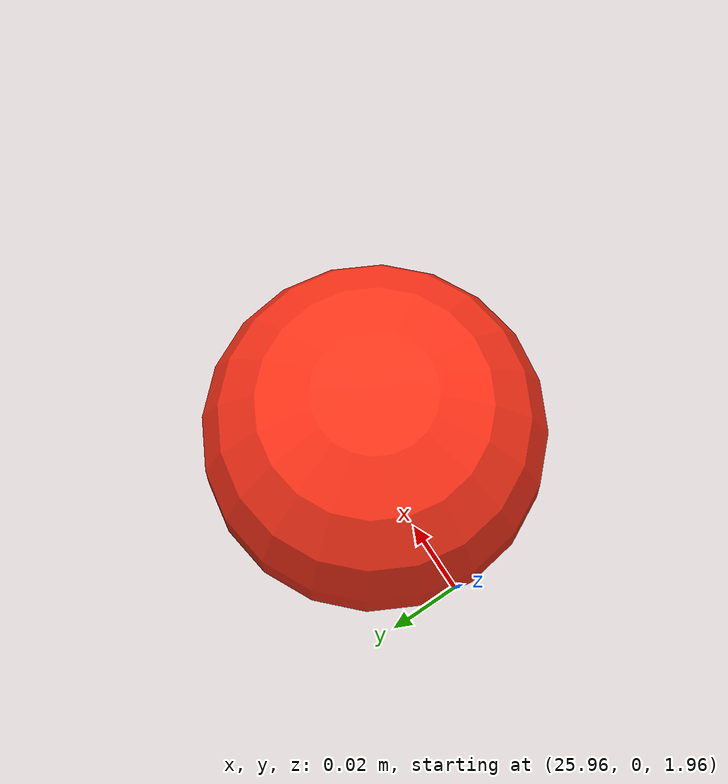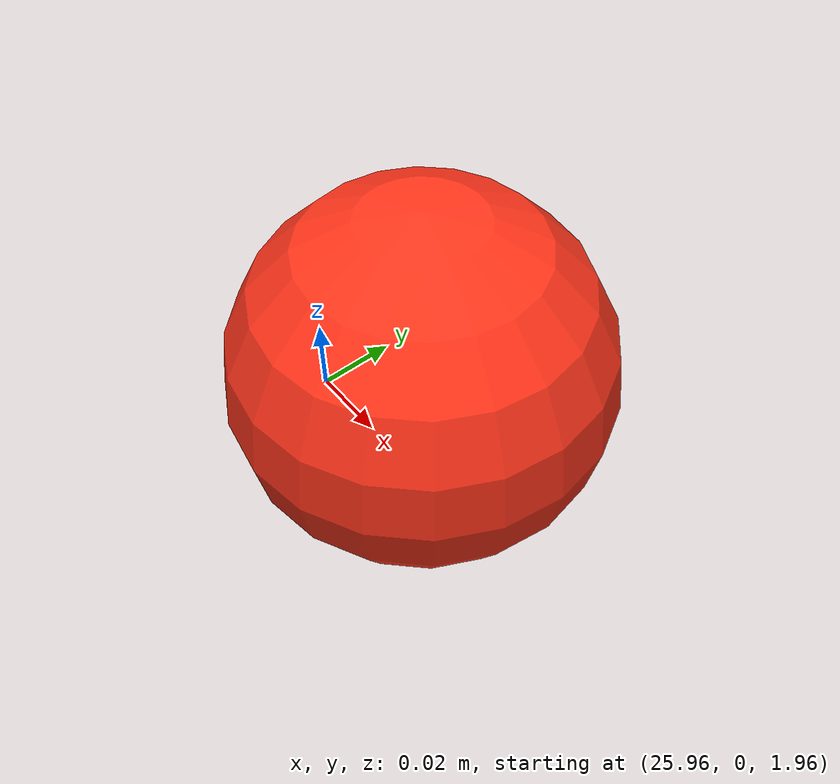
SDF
<?xml version="1.0" ?>
<sdf version="1.9">
  <world name="probe">

    <physics name="1ms" type="ignored">
      <max_step_size>0.001</max_step_size>
      <real_time_factor>1.0</real_time_factor>
    </physics>

    <plugin filename="gz-sim-physics-system"
            name="gz::sim::systems::Physics"/>
    <plugin filename="gz-sim-scene-broadcaster-system"
            name="gz::sim::systems::SceneBroadcaster"/>
    <plugin filename="gz-sim-sensors-system"
            name="gz::sim::systems::Sensors">
      <render_engine>ogre2</render_engine>
    </plugin>

    <light type="directional" name="sun">
      <cast_shadows>false</cast_shadows>
      <pose>0 0 10 0 0 0</pose>
      <diffuse>1 1 1 1</diffuse>
      <direction>-0.5 0.1 -0.9</direction>
    </light>

    <!-- Camera under test. Static: this probe measures optics, not flight. -->
    <model name="probe_cam">
      <static>true</static>
      <pose>0 0 2 0 0 0</pose>
      <link name="camera_link">
        <sensor name="probe_depth" type="depth_camera">
          <pose>0 0 0 0 0 0</pose>
          <always_on>1</always_on>
          <update_rate>15</update_rate>
          <camera name="depth">
            <horizontal_fov>0.471239</horizontal_fov>
            <image>
              <width>1600</width>
              <height>1300</height>
              <format>R_FLOAT32</format>
            </image>
            <clip>
              <near>0.2</near>
              <far>30.0</far>
            </clip>
            <optical_frame_id>camera_optical_frame</optical_frame_id>
          </camera>
          <topic>/gz/probe/depth</topic>
          <gz_frame_id>camera_optical_frame</gz_frame_id>
        </sensor>
      </link>
    </model>

    <!-- 80 mm ball (radius 0.040), matching models/projectile, on the axis. -->
    <model name="ball">
      <static>true</static>
      <pose>26.0 0 2 0 0 0</pose>
      <link name="link">
        <visual name="visual">
          <geometry>
            <sphere><radius>0.040</radius></sphere>
          </geometry>
          <material>
            <ambient>1 0.2 0.1 1</ambient>
            <diffuse>1 0.2 0.1 1</diffuse>
          </material>
        </visual>
      </link>
    </model>

  </world>
</sdf>
